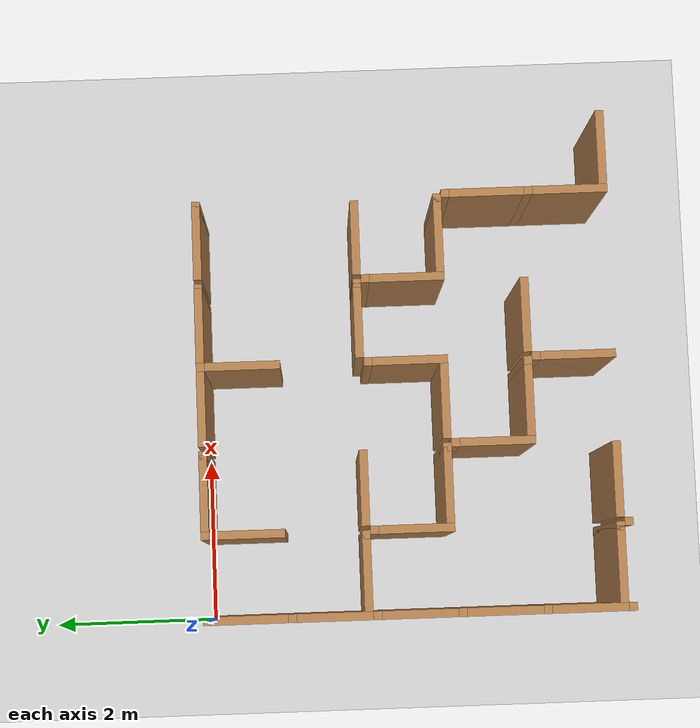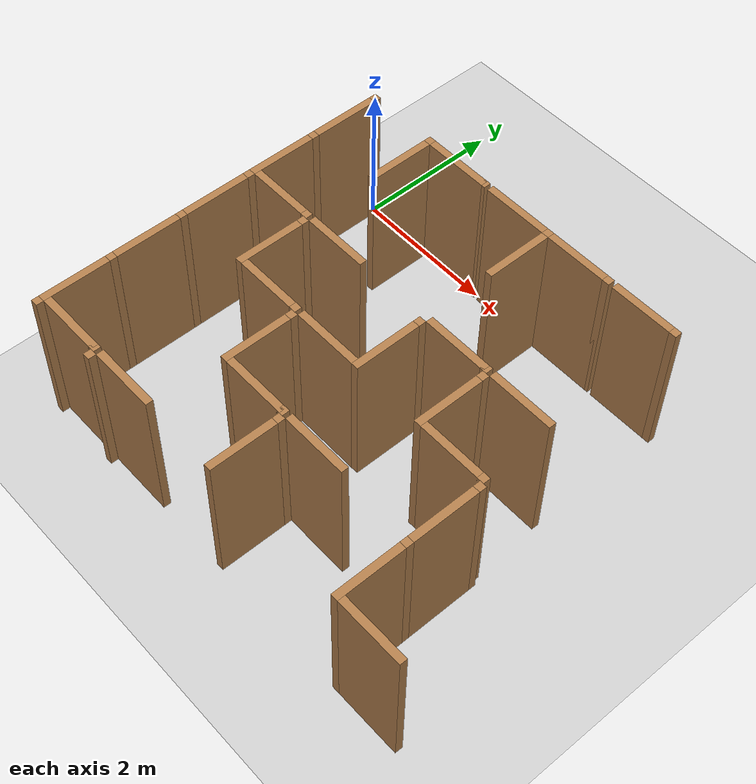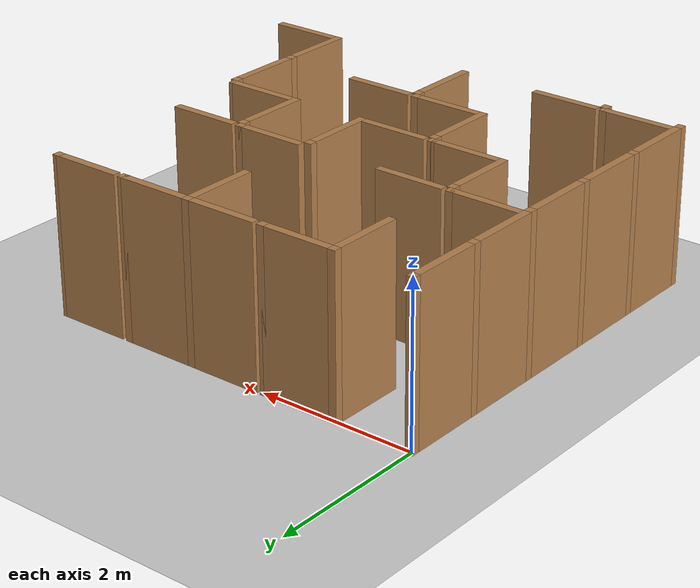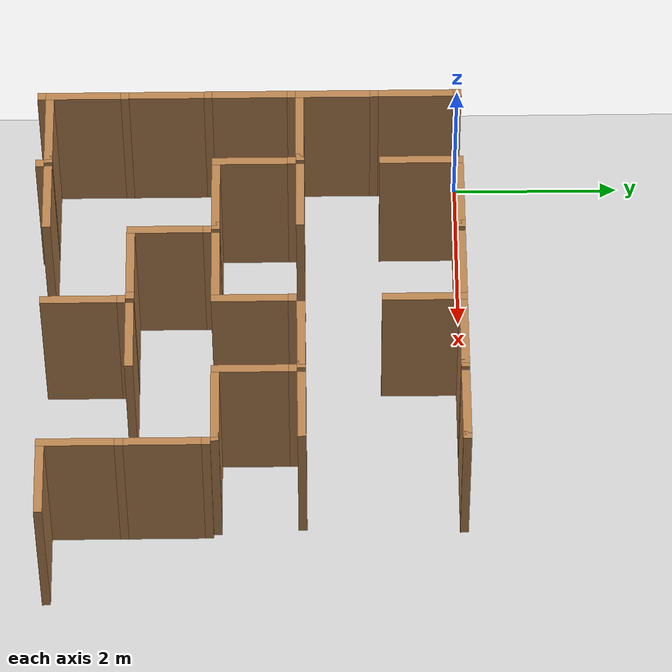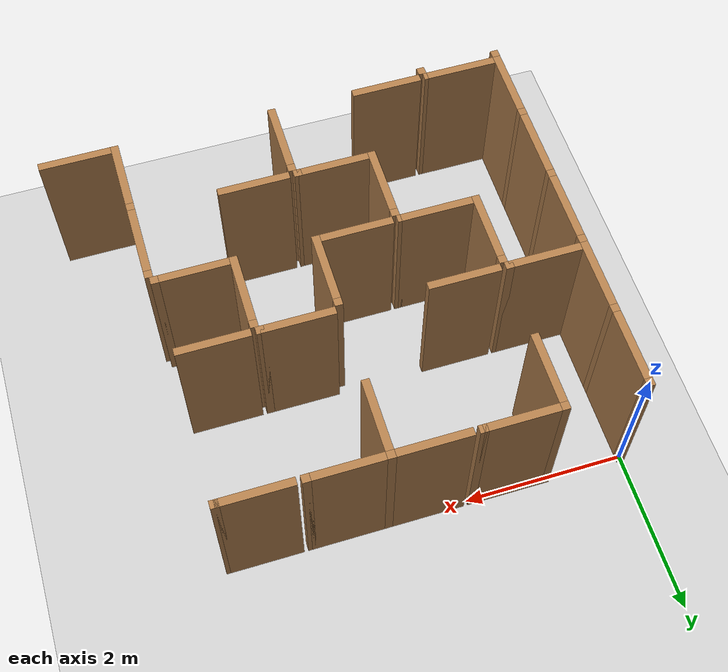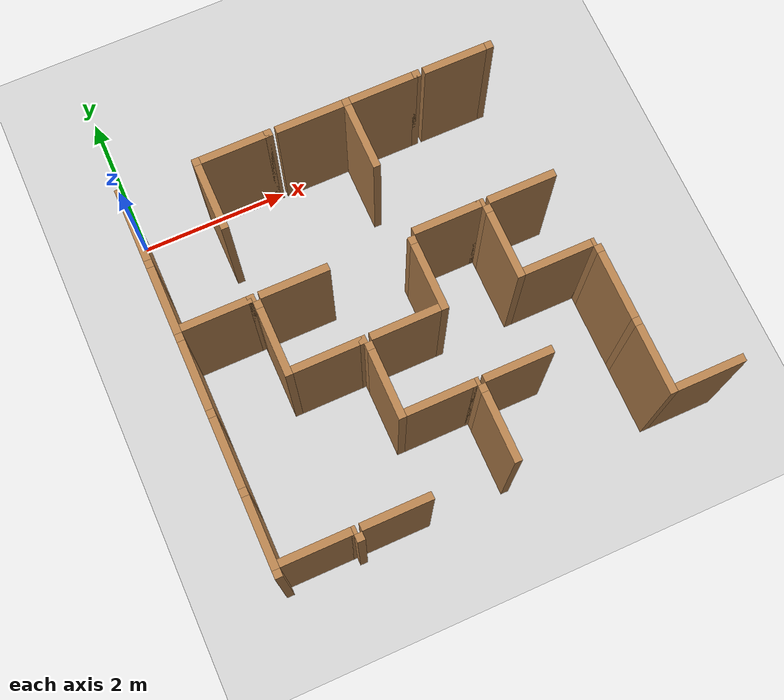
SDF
<sdf version="1.6">
 <world name="default">
  <include><uri>model://sun</uri></include>
  <model name="ground_plane">
   <static>true</static>
   <link name="link">
    <collision name="collision"><geometry><plane><size>12.0 12.0</size></plane></geometry></collision>
    <visual name="visual">
     <cast_shadows>false</cast_shadows>
     <geometry><plane><size>12.0 12.0</size></plane></geometry>
     <material>
      <script><uri>file://media/materials/scripts/gazebo.material</uri><name>Gazebo/Grey</name></script>
     </material>
    </visual>
   </link>
   <pose>6.0 -6.0 0 0 0 0</pose>
  </model>
  <model name="vwall_0_0">
   <pose>0.0 -0.5 1.0 0 0 0</pose>
   <link name="link">
    <collision name="collision"><geometry><box><size>0.1 0.9 2</size></box></geometry></collision>
    <visual name="visual">
     <geometry><box><size>0.1 0.9 2</size></box></geometry>
     <material>
      <script><uri>file://media/materials/scripts/gazebo.material</uri><name>Gazebo/Wood</name></script>
     </material>
    </visual>
   </link>
  </model>
  <model name="joint_0.0_0.0">
   <pose>0.0 0.0 1.0 0 0 0</pose>
   <link name="link">
    <collision name="collision"><geometry><box><size>0.1 0.1 2</size></box></geometry></collision>
    <visual name="visual">
     <geometry><box><size>0.1 0.1 2</size></box></geometry>
     <material>
      <script><uri>file://media/materials/scripts/gazebo.material</uri><name>Gazebo/Wood</name></script>
     </material>
    </visual>
   </link>
  </model>
  <model name="vwall_0_1">
   <pose>1.0 -0.5 1.0 0 0 0</pose>
   <link name="link">
    <collision name="collision"><geometry><box><size>0.1 0.9 2</size></box></geometry></collision>
    <visual name="visual">
     <geometry><box><size>0.1 0.9 2</size></box></geometry>
     <material>
      <script><uri>file://media/materials/scripts/gazebo.material</uri><name>Gazebo/Wood</name></script>
     </material>
    </visual>
   </link>
  </model>
  <model name="joint_1.0_0.0">
   <pose>1.0 0.0 1.0 0 0 0</pose>
   <link name="link">
    <collision name="collision"><geometry><box><size>0.1 0.1 2</size></box></geometry></collision>
    <visual name="visual">
     <geometry><box><size>0.1 0.1 2</size></box></geometry>
     <material>
      <script><uri>file://media/materials/scripts/gazebo.material</uri><name>Gazebo/Wood</name></script>
     </material>
    </visual>
   </link>
  </model>
  <model name="vwall_0_3">
   <pose>3.0 -0.5 1.0 0 0 0</pose>
   <link name="link">
    <collision name="collision"><geometry><box><size>0.1 0.9 2</size></box></geometry></collision>
    <visual name="visual">
     <geometry><box><size>0.1 0.9 2</size></box></geometry>
     <material>
      <script><uri>file://media/materials/scripts/gazebo.material</uri><name>Gazebo/Wood</name></script>
     </material>
    </visual>
   </link>
  </model>
  <model name="joint_3.0_0.0">
   <pose>3.0 0.0 1.0 0 0 0</pose>
   <link name="link">
    <collision name="collision"><geometry><box><size>0.1 0.1 2</size></box></geometry></collision>
    <visual name="visual">
     <geometry><box><size>0.1 0.1 2</size></box></geometry>
     <material>
      <script><uri>file://media/materials/scripts/gazebo.material</uri><name>Gazebo/Wood</name></script>
     </material>
    </visual>
   </link>
  </model>
  <model name="vwall_1_0">
   <pose>0.0 -1.5 1.0 0 0 0</pose>
   <link name="link">
    <collision name="collision"><geometry><box><size>0.1 0.9 2</size></box></geometry></collision>
    <visual name="visual">
     <geometry><box><size>0.1 0.9 2</size></box></geometry>
     <material>
      <script><uri>file://media/materials/scripts/gazebo.material</uri><name>Gazebo/Wood</name></script>
     </material>
    </visual>
   </link>
  </model>
  <model name="joint_0.0_-1.0">
   <pose>0.0 -1.0 1.0 0 0 0</pose>
   <link name="link">
    <collision name="collision"><geometry><box><size>0.1 0.1 2</size></box></geometry></collision>
    <visual name="visual">
     <geometry><box><size>0.1 0.1 2</size></box></geometry>
     <material>
      <script><uri>file://media/materials/scripts/gazebo.material</uri><name>Gazebo/Wood</name></script>
     </material>
    </visual>
   </link>
  </model>
  <model name="vwall_2_0">
   <pose>0.0 -2.5 1.0 0 0 0</pose>
   <link name="link">
    <collision name="collision"><geometry><box><size>0.1 0.9 2</size></box></geometry></collision>
    <visual name="visual">
     <geometry><box><size>0.1 0.9 2</size></box></geometry>
     <material>
      <script><uri>file://media/materials/scripts/gazebo.material</uri><name>Gazebo/Wood</name></script>
     </material>
    </visual>
   </link>
  </model>
  <model name="joint_0.0_-2.0">
   <pose>0.0 -2.0 1.0 0 0 0</pose>
   <link name="link">
    <collision name="collision"><geometry><box><size>0.1 0.1 2</size></box></geometry></collision>
    <visual name="visual">
     <geometry><box><size>0.1 0.1 2</size></box></geometry>
     <material>
      <script><uri>file://media/materials/scripts/gazebo.material</uri><name>Gazebo/Wood</name></script>
     </material>
    </visual>
   </link>
  </model>
  <model name="vwall_2_1">
   <pose>1.0 -2.5 1.0 0 0 0</pose>
   <link name="link">
    <collision name="collision"><geometry><box><size>0.1 0.9 2</size></box></geometry></collision>
    <visual name="visual">
     <geometry><box><size>0.1 0.9 2</size></box></geometry>
     <material>
      <script><uri>file://media/materials/scripts/gazebo.material</uri><name>Gazebo/Wood</name></script>
     </material>
    </visual>
   </link>
  </model>
  <model name="joint_1.0_-2.0">
   <pose>1.0 -2.0 1.0 0 0 0</pose>
   <link name="link">
    <collision name="collision"><geometry><box><size>0.1 0.1 2</size></box></geometry></collision>
    <visual name="visual">
     <geometry><box><size>0.1 0.1 2</size></box></geometry>
     <material>
      <script><uri>file://media/materials/scripts/gazebo.material</uri><name>Gazebo/Wood</name></script>
     </material>
    </visual>
   </link>
  </model>
  <model name="vwall_2_3">
   <pose>3.0 -2.5 1.0 0 0 0</pose>
   <link name="link">
    <collision name="collision"><geometry><box><size>0.1 0.9 2</size></box></geometry></collision>
    <visual name="visual">
     <geometry><box><size>0.1 0.9 2</size></box></geometry>
     <material>
      <script><uri>file://media/materials/scripts/gazebo.material</uri><name>Gazebo/Wood</name></script>
     </material>
    </visual>
   </link>
  </model>
  <model name="joint_3.0_-2.0">
   <pose>3.0 -2.0 1.0 0 0 0</pose>
   <link name="link">
    <collision name="collision"><geometry><box><size>0.1 0.1 2</size></box></geometry></collision>
    <visual name="visual">
     <geometry><box><size>0.1 0.1 2</size></box></geometry>
     <material>
      <script><uri>file://media/materials/scripts/gazebo.material</uri><name>Gazebo/Wood</name></script>
     </material>
    </visual>
   </link>
  </model>
  <model name="vwall_2_4">
   <pose>4.0 -2.5 1.0 0 0 0</pose>
   <link name="link">
    <collision name="collision"><geometry><box><size>0.1 0.9 2</size></box></geometry></collision>
    <visual name="visual">
     <geometry><box><size>0.1 0.9 2</size></box></geometry>
     <material>
      <script><uri>file://media/materials/scripts/gazebo.material</uri><name>Gazebo/Wood</name></script>
     </material>
    </visual>
   </link>
  </model>
  <model name="joint_4.0_-2.0">
   <pose>4.0 -2.0 1.0 0 0 0</pose>
   <link name="link">
    <collision name="collision"><geometry><box><size>0.1 0.1 2</size></box></geometry></collision>
    <visual name="visual">
     <geometry><box><size>0.1 0.1 2</size></box></geometry>
     <material>
      <script><uri>file://media/materials/scripts/gazebo.material</uri><name>Gazebo/Wood</name></script>
     </material>
    </visual>
   </link>
  </model>
  <model name="vwall_3_0">
   <pose>0.0 -3.5 1.0 0 0 0</pose>
   <link name="link">
    <collision name="collision"><geometry><box><size>0.1 0.9 2</size></box></geometry></collision>
    <visual name="visual">
     <geometry><box><size>0.1 0.9 2</size></box></geometry>
     <material>
      <script><uri>file://media/materials/scripts/gazebo.material</uri><name>Gazebo/Wood</name></script>
     </material>
    </visual>
   </link>
  </model>
  <model name="joint_0.0_-3.0">
   <pose>0.0 -3.0 1.0 0 0 0</pose>
   <link name="link">
    <collision name="collision"><geometry><box><size>0.1 0.1 2</size></box></geometry></collision>
    <visual name="visual">
     <geometry><box><size>0.1 0.1 2</size></box></geometry>
     <material>
      <script><uri>file://media/materials/scripts/gazebo.material</uri><name>Gazebo/Wood</name></script>
     </material>
    </visual>
   </link>
  </model>
  <model name="vwall_3_2">
   <pose>2.0 -3.5 1.0 0 0 0</pose>
   <link name="link">
    <collision name="collision"><geometry><box><size>0.1 0.9 2</size></box></geometry></collision>
    <visual name="visual">
     <geometry><box><size>0.1 0.9 2</size></box></geometry>
     <material>
      <script><uri>file://media/materials/scripts/gazebo.material</uri><name>Gazebo/Wood</name></script>
     </material>
    </visual>
   </link>
  </model>
  <model name="joint_2.0_-3.0">
   <pose>2.0 -3.0 1.0 0 0 0</pose>
   <link name="link">
    <collision name="collision"><geometry><box><size>0.1 0.1 2</size></box></geometry></collision>
    <visual name="visual">
     <geometry><box><size>0.1 0.1 2</size></box></geometry>
     <material>
      <script><uri>file://media/materials/scripts/gazebo.material</uri><name>Gazebo/Wood</name></script>
     </material>
    </visual>
   </link>
  </model>
  <model name="vwall_3_5">
   <pose>5.0 -3.5 1.0 0 0 0</pose>
   <link name="link">
    <collision name="collision"><geometry><box><size>0.1 0.9 2</size></box></geometry></collision>
    <visual name="visual">
     <geometry><box><size>0.1 0.9 2</size></box></geometry>
     <material>
      <script><uri>file://media/materials/scripts/gazebo.material</uri><name>Gazebo/Wood</name></script>
     </material>
    </visual>
   </link>
  </model>
  <model name="joint_5.0_-3.0">
   <pose>5.0 -3.0 1.0 0 0 0</pose>
   <link name="link">
    <collision name="collision"><geometry><box><size>0.1 0.1 2</size></box></geometry></collision>
    <visual name="visual">
     <geometry><box><size>0.1 0.1 2</size></box></geometry>
     <material>
      <script><uri>file://media/materials/scripts/gazebo.material</uri><name>Gazebo/Wood</name></script>
     </material>
    </visual>
   </link>
  </model>
  <model name="vwall_4_0">
   <pose>0.0 -4.5 1.0 0 0 0</pose>
   <link name="link">
    <collision name="collision"><geometry><box><size>0.1 0.9 2</size></box></geometry></collision>
    <visual name="visual">
     <geometry><box><size>0.1 0.9 2</size></box></geometry>
     <material>
      <script><uri>file://media/materials/scripts/gazebo.material</uri><name>Gazebo/Wood</name></script>
     </material>
    </visual>
   </link>
  </model>
  <model name="joint_0.0_-4.0">
   <pose>0.0 -4.0 1.0 0 0 0</pose>
   <link name="link">
    <collision name="collision"><geometry><box><size>0.1 0.1 2</size></box></geometry></collision>
    <visual name="visual">
     <geometry><box><size>0.1 0.1 2</size></box></geometry>
     <material>
      <script><uri>file://media/materials/scripts/gazebo.material</uri><name>Gazebo/Wood</name></script>
     </material>
    </visual>
   </link>
  </model>
  <model name="vwall_4_3">
   <pose>3.0 -4.5 1.0 0 0 0</pose>
   <link name="link">
    <collision name="collision"><geometry><box><size>0.1 0.9 2</size></box></geometry></collision>
    <visual name="visual">
     <geometry><box><size>0.1 0.9 2</size></box></geometry>
     <material>
      <script><uri>file://media/materials/scripts/gazebo.material</uri><name>Gazebo/Wood</name></script>
     </material>
    </visual>
   </link>
  </model>
  <model name="joint_3.0_-4.0">
   <pose>3.0 -4.0 1.0 0 0 0</pose>
   <link name="link">
    <collision name="collision"><geometry><box><size>0.1 0.1 2</size></box></geometry></collision>
    <visual name="visual">
     <geometry><box><size>0.1 0.1 2</size></box></geometry>
     <material>
      <script><uri>file://media/materials/scripts/gazebo.material</uri><name>Gazebo/Wood</name></script>
     </material>
    </visual>
   </link>
  </model>
  <model name="vwall_4_5">
   <pose>5.0 -4.5 1.0 0 0 0</pose>
   <link name="link">
    <collision name="collision"><geometry><box><size>0.1 0.9 2</size></box></geometry></collision>
    <visual name="visual">
     <geometry><box><size>0.1 0.9 2</size></box></geometry>
     <material>
      <script><uri>file://media/materials/scripts/gazebo.material</uri><name>Gazebo/Wood</name></script>
     </material>
    </visual>
   </link>
  </model>
  <model name="joint_5.0_-4.0">
   <pose>5.0 -4.0 1.0 0 0 0</pose>
   <link name="link">
    <collision name="collision"><geometry><box><size>0.1 0.1 2</size></box></geometry></collision>
    <visual name="visual">
     <geometry><box><size>0.1 0.1 2</size></box></geometry>
     <material>
      <script><uri>file://media/materials/scripts/gazebo.material</uri><name>Gazebo/Wood</name></script>
     </material>
    </visual>
   </link>
  </model>
  <model name="joint_0.0_-5.0">
   <pose>0.0 -5.0 1.0 0 0 0</pose>
   <link name="link">
    <collision name="collision"><geometry><box><size>0.1 0.1 2</size></box></geometry></collision>
    <visual name="visual">
     <geometry><box><size>0.1 0.1 2</size></box></geometry>
     <material>
      <script><uri>file://media/materials/scripts/gazebo.material</uri><name>Gazebo/Wood</name></script>
     </material>
    </visual>
   </link>
  </model>
  <model name="joint_1.0_-5.0">
   <pose>1.0 -5.0 1.0 0 0 0</pose>
   <link name="link">
    <collision name="collision"><geometry><box><size>0.1 0.1 2</size></box></geometry></collision>
    <visual name="visual">
     <geometry><box><size>0.1 0.1 2</size></box></geometry>
     <material>
      <script><uri>file://media/materials/scripts/gazebo.material</uri><name>Gazebo/Wood</name></script>
     </material>
    </visual>
   </link>
  </model>
  <model name="hwall_0_1">
   <pose>1.5 0.0 1.0 0 0 0</pose>
   <link name="link">
    <collision name="collision"><geometry><box><size>0.9 0.1 2</size></box></geometry></collision>
    <visual name="visual">
     <geometry><box><size>0.9 0.1 2</size></box></geometry>
     <material>
      <script><uri>file://media/materials/scripts/gazebo.material</uri><name>Gazebo/Wood</name></script>
     </material>
    </visual>
   </link>
  </model>
  <model name="joint_1.95_0.0">
   <pose>1.95 0.0 1.0 0 0 0</pose>
   <link name="link">
    <collision name="collision"><geometry><box><size>0.1 0.1 2</size></box></geometry></collision>
    <visual name="visual">
     <geometry><box><size>0.1 0.1 2</size></box></geometry>
     <material>
      <script><uri>file://media/materials/scripts/gazebo.material</uri><name>Gazebo/Wood</name></script>
     </material>
    </visual>
   </link>
  </model>
  <model name="hwall_0_2">
   <pose>2.5 0.0 1.0 0 0 0</pose>
   <link name="link">
    <collision name="collision"><geometry><box><size>0.9 0.1 2</size></box></geometry></collision>
    <visual name="visual">
     <geometry><box><size>0.9 0.1 2</size></box></geometry>
     <material>
      <script><uri>file://media/materials/scripts/gazebo.material</uri><name>Gazebo/Wood</name></script>
     </material>
    </visual>
   </link>
  </model>
  <model name="hwall_0_3">
   <pose>3.5 0.0 1.0 0 0 0</pose>
   <link name="link">
    <collision name="collision"><geometry><box><size>0.9 0.1 2</size></box></geometry></collision>
    <visual name="visual">
     <geometry><box><size>0.9 0.1 2</size></box></geometry>
     <material>
      <script><uri>file://media/materials/scripts/gazebo.material</uri><name>Gazebo/Wood</name></script>
     </material>
    </visual>
   </link>
  </model>
  <model name="joint_3.95_0.0">
   <pose>3.95 0.0 1.0 0 0 0</pose>
   <link name="link">
    <collision name="collision"><geometry><box><size>0.1 0.1 2</size></box></geometry></collision>
    <visual name="visual">
     <geometry><box><size>0.1 0.1 2</size></box></geometry>
     <material>
      <script><uri>file://media/materials/scripts/gazebo.material</uri><name>Gazebo/Wood</name></script>
     </material>
    </visual>
   </link>
  </model>
  <model name="hwall_0_4">
   <pose>4.5 0.0 1.0 0 0 0</pose>
   <link name="link">
    <collision name="collision"><geometry><box><size>0.9 0.1 2</size></box></geometry></collision>
    <visual name="visual">
     <geometry><box><size>0.9 0.1 2</size></box></geometry>
     <material>
      <script><uri>file://media/materials/scripts/gazebo.material</uri><name>Gazebo/Wood</name></script>
     </material>
    </visual>
   </link>
  </model>
  <model name="joint_4.95_0.0">
   <pose>4.95 0.0 1.0 0 0 0</pose>
   <link name="link">
    <collision name="collision"><geometry><box><size>0.1 0.1 2</size></box></geometry></collision>
    <visual name="visual">
     <geometry><box><size>0.1 0.1 2</size></box></geometry>
     <material>
      <script><uri>file://media/materials/scripts/gazebo.material</uri><name>Gazebo/Wood</name></script>
     </material>
    </visual>
   </link>
  </model>
  <model name="hwall_1_0">
   <pose>0.5 -1.9 1.0 0 0 0</pose>
   <link name="link">
    <collision name="collision"><geometry><box><size>0.9 0.1 2</size></box></geometry></collision>
    <visual name="visual">
     <geometry><box><size>0.9 0.1 2</size></box></geometry>
     <material>
      <script><uri>file://media/materials/scripts/gazebo.material</uri><name>Gazebo/Wood</name></script>
     </material>
    </visual>
   </link>
  </model>
  <model name="joint_0.95_-1.9">
   <pose>0.95 -1.9 1.0 0 0 0</pose>
   <link name="link">
    <collision name="collision"><geometry><box><size>0.1 0.1 2</size></box></geometry></collision>
    <visual name="visual">
     <geometry><box><size>0.1 0.1 2</size></box></geometry>
     <material>
      <script><uri>file://media/materials/scripts/gazebo.material</uri><name>Gazebo/Wood</name></script>
     </material>
    </visual>
   </link>
  </model>
  <model name="hwall_1_1">
   <pose>1.5 -1.9 1.0 0 0 0</pose>
   <link name="link">
    <collision name="collision"><geometry><box><size>0.9 0.1 2</size></box></geometry></collision>
    <visual name="visual">
     <geometry><box><size>0.9 0.1 2</size></box></geometry>
     <material>
      <script><uri>file://media/materials/scripts/gazebo.material</uri><name>Gazebo/Wood</name></script>
     </material>
    </visual>
   </link>
  </model>
  <model name="hwall_1_3">
   <pose>3.5 -1.9 1.0 0 0 0</pose>
   <link name="link">
    <collision name="collision"><geometry><box><size>0.9 0.1 2</size></box></geometry></collision>
    <visual name="visual">
     <geometry><box><size>0.9 0.1 2</size></box></geometry>
     <material>
      <script><uri>file://media/materials/scripts/gazebo.material</uri><name>Gazebo/Wood</name></script>
     </material>
    </visual>
   </link>
  </model>
  <model name="joint_3.95_-1.9">
   <pose>3.95 -1.9 1.0 0 0 0</pose>
   <link name="link">
    <collision name="collision"><geometry><box><size>0.1 0.1 2</size></box></geometry></collision>
    <visual name="visual">
     <geometry><box><size>0.1 0.1 2</size></box></geometry>
     <material>
      <script><uri>file://media/materials/scripts/gazebo.material</uri><name>Gazebo/Wood</name></script>
     </material>
    </visual>
   </link>
  </model>
  <model name="hwall_1_4">
   <pose>4.5 -1.9 1.0 0 0 0</pose>
   <link name="link">
    <collision name="collision"><geometry><box><size>0.9 0.1 2</size></box></geometry></collision>
    <visual name="visual">
     <geometry><box><size>0.9 0.1 2</size></box></geometry>
     <material>
      <script><uri>file://media/materials/scripts/gazebo.material</uri><name>Gazebo/Wood</name></script>
     </material>
    </visual>
   </link>
  </model>
  <model name="hwall_2_1">
   <pose>1.5 -2.9 1.0 0 0 0</pose>
   <link name="link">
    <collision name="collision"><geometry><box><size>0.9 0.1 2</size></box></geometry></collision>
    <visual name="visual">
     <geometry><box><size>0.9 0.1 2</size></box></geometry>
     <material>
      <script><uri>file://media/materials/scripts/gazebo.material</uri><name>Gazebo/Wood</name></script>
     </material>
    </visual>
   </link>
  </model>
  <model name="joint_1.95_-2.9">
   <pose>1.95 -2.9 1.0 0 0 0</pose>
   <link name="link">
    <collision name="collision"><geometry><box><size>0.1 0.1 2</size></box></geometry></collision>
    <visual name="visual">
     <geometry><box><size>0.1 0.1 2</size></box></geometry>
     <material>
      <script><uri>file://media/materials/scripts/gazebo.material</uri><name>Gazebo/Wood</name></script>
     </material>
    </visual>
   </link>
  </model>
  <model name="hwall_2_2">
   <pose>2.5 -2.9 1.0 0 0 0</pose>
   <link name="link">
    <collision name="collision"><geometry><box><size>0.9 0.1 2</size></box></geometry></collision>
    <visual name="visual">
     <geometry><box><size>0.9 0.1 2</size></box></geometry>
     <material>
      <script><uri>file://media/materials/scripts/gazebo.material</uri><name>Gazebo/Wood</name></script>
     </material>
    </visual>
   </link>
  </model>
  <model name="hwall_2_4">
   <pose>4.5 -2.9 1.0 0 0 0</pose>
   <link name="link">
    <collision name="collision"><geometry><box><size>0.9 0.1 2</size></box></geometry></collision>
    <visual name="visual">
     <geometry><box><size>0.9 0.1 2</size></box></geometry>
     <material>
      <script><uri>file://media/materials/scripts/gazebo.material</uri><name>Gazebo/Wood</name></script>
     </material>
    </visual>
   </link>
  </model>
  <model name="joint_4.95_-2.9">
   <pose>4.95 -2.9 1.0 0 0 0</pose>
   <link name="link">
    <collision name="collision"><geometry><box><size>0.1 0.1 2</size></box></geometry></collision>
    <visual name="visual">
     <geometry><box><size>0.1 0.1 2</size></box></geometry>
     <material>
      <script><uri>file://media/materials/scripts/gazebo.material</uri><name>Gazebo/Wood</name></script>
     </material>
    </visual>
   </link>
  </model>
  <model name="hwall_3_2">
   <pose>2.5 -3.9 1.0 0 0 0</pose>
   <link name="link">
    <collision name="collision"><geometry><box><size>0.9 0.1 2</size></box></geometry></collision>
    <visual name="visual">
     <geometry><box><size>0.9 0.1 2</size></box></geometry>
     <material>
      <script><uri>file://media/materials/scripts/gazebo.material</uri><name>Gazebo/Wood</name></script>
     </material>
    </visual>
   </link>
  </model>
  <model name="joint_2.95_-3.9">
   <pose>2.95 -3.9 1.0 0 0 0</pose>
   <link name="link">
    <collision name="collision"><geometry><box><size>0.1 0.1 2</size></box></geometry></collision>
    <visual name="visual">
     <geometry><box><size>0.1 0.1 2</size></box></geometry>
     <material>
      <script><uri>file://media/materials/scripts/gazebo.material</uri><name>Gazebo/Wood</name></script>
     </material>
    </visual>
   </link>
  </model>
  <model name="hwall_3_3">
   <pose>3.5 -3.9 1.0 0 0 0</pose>
   <link name="link">
    <collision name="collision"><geometry><box><size>0.9 0.1 2</size></box></geometry></collision>
    <visual name="visual">
     <geometry><box><size>0.9 0.1 2</size></box></geometry>
     <material>
      <script><uri>file://media/materials/scripts/gazebo.material</uri><name>Gazebo/Wood</name></script>
     </material>
    </visual>
   </link>
  </model>
  <model name="hwall_4_0">
   <pose>0.5 -4.9 1.0 0 0 0</pose>
   <link name="link">
    <collision name="collision"><geometry><box><size>0.9 0.1 2</size></box></geometry></collision>
    <visual name="visual">
     <geometry><box><size>0.9 0.1 2</size></box></geometry>
     <material>
      <script><uri>file://media/materials/scripts/gazebo.material</uri><name>Gazebo/Wood</name></script>
     </material>
    </visual>
   </link>
  </model>
  <model name="joint_0.95_-4.9">
   <pose>0.95 -4.9 1.0 0 0 0</pose>
   <link name="link">
    <collision name="collision"><geometry><box><size>0.1 0.1 2</size></box></geometry></collision>
    <visual name="visual">
     <geometry><box><size>0.1 0.1 2</size></box></geometry>
     <material>
      <script><uri>file://media/materials/scripts/gazebo.material</uri><name>Gazebo/Wood</name></script>
     </material>
    </visual>
   </link>
  </model>
  <model name="hwall_4_1">
   <pose>1.5 -4.9 1.0 0 0 0</pose>
   <link name="link">
    <collision name="collision"><geometry><box><size>0.9 0.1 2</size></box></geometry></collision>
    <visual name="visual">
     <geometry><box><size>0.9 0.1 2</size></box></geometry>
     <material>
      <script><uri>file://media/materials/scripts/gazebo.material</uri><name>Gazebo/Wood</name></script>
     </material>
    </visual>
   </link>
  </model>
  <model name="hwall_4_5">
   <pose>5.5 -4.9 1.0 0 0 0</pose>
   <link name="link">
    <collision name="collision"><geometry><box><size>0.9 0.1 2</size></box></geometry></collision>
    <visual name="visual">
     <geometry><box><size>0.9 0.1 2</size></box></geometry>
     <material>
      <script><uri>file://media/materials/scripts/gazebo.material</uri><name>Gazebo/Wood</name></script>
     </material>
    </visual>
   </link>
  </model>
 </world>
</sdf>
